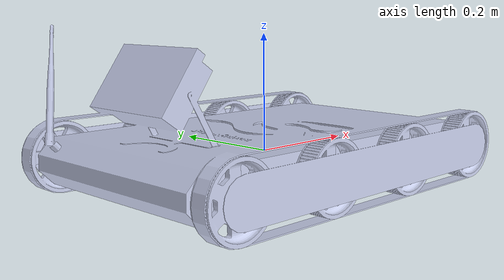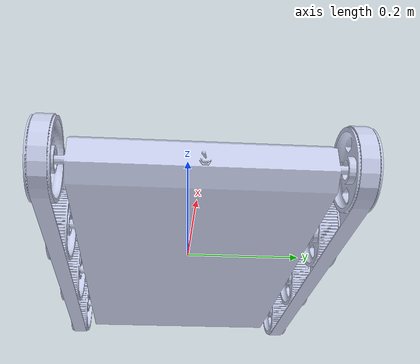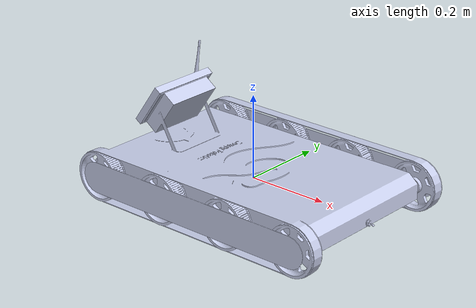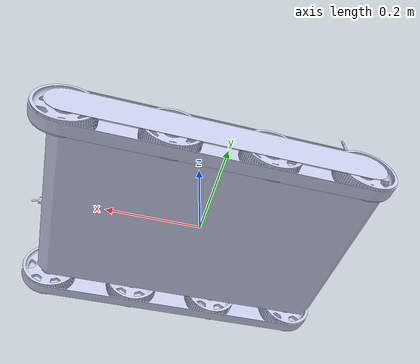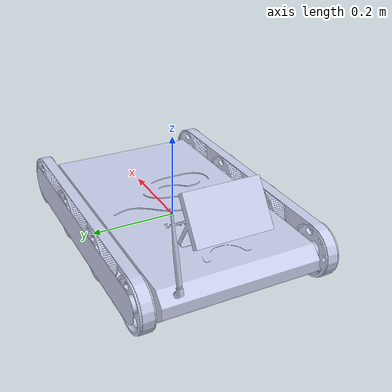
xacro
<?xml version="1.0"?>
<robot xmlns:xacro="http://www.ros.org/wiki/xacro" name="warehouse_robot">
  <xacro:property name="PI" value="3.142" />

  <xacro:macro name="wheel">
    <inertial>
      <origin xyz="1.404E-12 -1.4273E-06 -3.24719999991261E-12" rpy="0 0 0" />
      <mass value="0.13417" />
      <inertia ixx="0.000146905644650745" ixy="5.24655439786608E-15" ixz="1.58665244652452E-14" iyy="0.000279392456161737" iyz="-8.08703217025071E-15" izz="0.00014690564464536" />
    </inertial>
    <visual>
      <origin xyz="0 0 0" rpy="0 0 0" />
      <geometry>
        <mesh filename="package://warehouse_robot/meshes/wheel.stl" />
      </geometry>
      <material name="">
        <color rgba="0.79216 0.81961 0.93333 1" />
      </material>
    </visual>

    <collision>
      <origin xyz="0 0 0" rpy="1.5707963267949 0 0" />
      <geometry>
        <mesh filename="package://warehouse_robot/meshes/wheel.stl" />
      </geometry>
    </collision>
  </xacro:macro>

  <link name="base_link">
  <inertial>
    <origin xyz="-0.010263 0.00040996 0.0060706" rpy="0 0 0" />
    <mass value="18.916" />
    <inertia ixx="0.23558234792081" ixy="-0.000747515049689842" ixz="-0.0256472781398799" iyy="0.676222174396288" iyz="-0.000297852127122243" izz="0.864544814460253" />
  </inertial>
  <visual>
    <origin xyz="0 0 0" rpy="${PI/2} 0 0" />
    <geometry>
      <mesh filename="package://warehouse_robot/meshes/bot.stl" />
    </geometry>
    <material name="">
      <color rgba="0.79216 0.81961 0.93333 1" />
    </material>
  </visual>
  <collision>
    <origin xyz="0 0 0" rpy="0 0 0" />
    <geometry>
      <mesh filename="package://warehouse_robot/meshes/bot.stl" />
    </geometry>
  </collision>
  </link>

  <!-- ===================== LEFT Wheels ============================= -->
  <link name="wheel_1">
  <xacro:wheel/>
  </link>

  <joint name="base_link_1" type="continuous">
    <origin xyz="-0.26933 0.212 0" rpy="-${PI/2} -${PI/2} 0" />
    <axis xyz="0 0 1" />
    <parent link="base_link" />
    <child link="wheel_1" />
  </joint>

  <link name="wheel_2">
  <xacro:wheel/>
  </link>

  <joint name="base_link_2" type="continuous">
    <origin xyz="-0.08 0.212 0" rpy="-${PI/2} -${PI/2} 0" />
    <axis xyz="0 0 1" />
    <parent link="base_link" />
    <child link="wheel_2" />
  </joint>

  <link name="wheel_3">
  <xacro:wheel/>
  </link>

  <joint name="base_link_3" type="continuous">
    <origin xyz="0.10934 0.212 0" rpy="-${PI/2} -${PI/2} 0" />
    <axis xyz="0 0 1" />
    <parent link="base_link" />
    <child link="wheel_3" />
  </joint>

  <link name="wheel_4">
  <xacro:wheel/>
  </link>

  <joint name="base_link_4" type="continuous">
    <origin xyz="0.29867 0.212 0" rpy="-${PI/2} -${PI/2} 0" />
    <axis xyz="0 0 1" />
    <parent link="base_link" />
    <child link="wheel_4" />
  </joint>

  <!-- ===================== RIGHT Wheels ============================= -->
  <link name="wheel_5">
  <xacro:wheel/>
  </link>

  <joint name="base_link_5" type="continuous">
    <origin xyz="-0.26933 -0.212 0" rpy="${PI/2} 0 0" />
    <axis xyz="0 0 1" />
    <parent link="base_link" />
    <child link="wheel_5" />
  </joint>

  <link name="wheel_6">
  <xacro:wheel/>
  </link>

  <joint name="base_link_6" type="continuous">
    <origin xyz="-0.08 -0.212 0" rpy="${PI/2} 0 0" />
    <axis xyz="0 0 1" />
    <parent link="base_link" />
    <child link="wheel_6" />
  </joint>

  <link name="wheel_7">
  <xacro:wheel/>
  </link>

  <joint name="base_link_7" type="continuous">
    <origin xyz="0.10934 -0.212 0" rpy="${PI/2} 0 0" />
    <axis xyz="0 0 1" />
    <parent link="base_link" />
    <child link="wheel_7" />
  </joint>

  <link name="wheel_8">
  <xacro:wheel/>
  </link>

  <joint name="base_link_8" type="continuous">
    <origin xyz="0.29867 -0.212 0" rpy="${PI/2} 0 0" />
    <axis xyz="0 0 1" />
    <parent link="base_link" />
    <child link="wheel_8" />
  </joint>
</robot>
